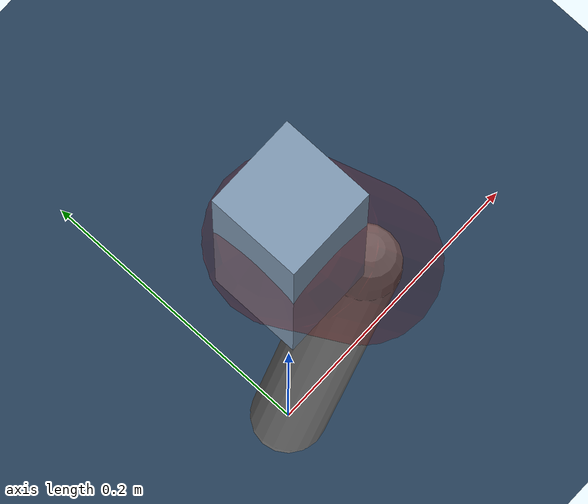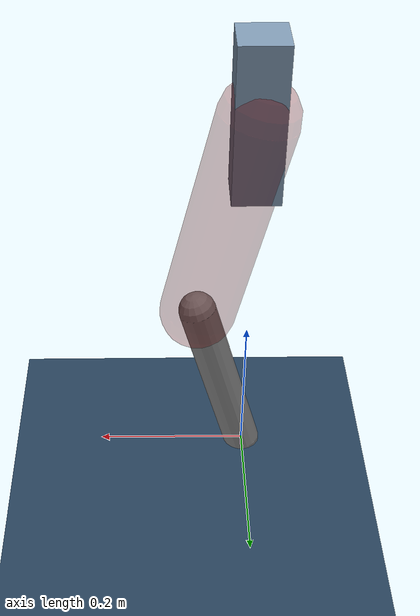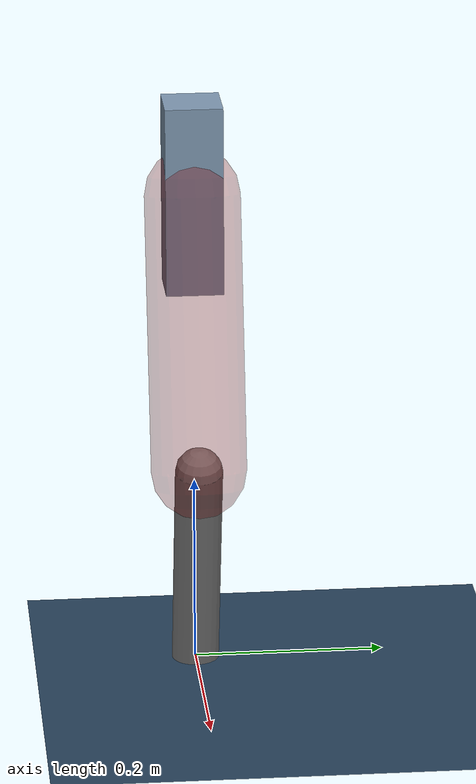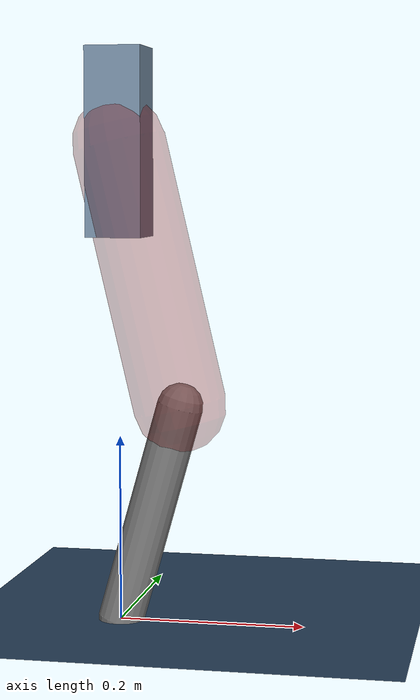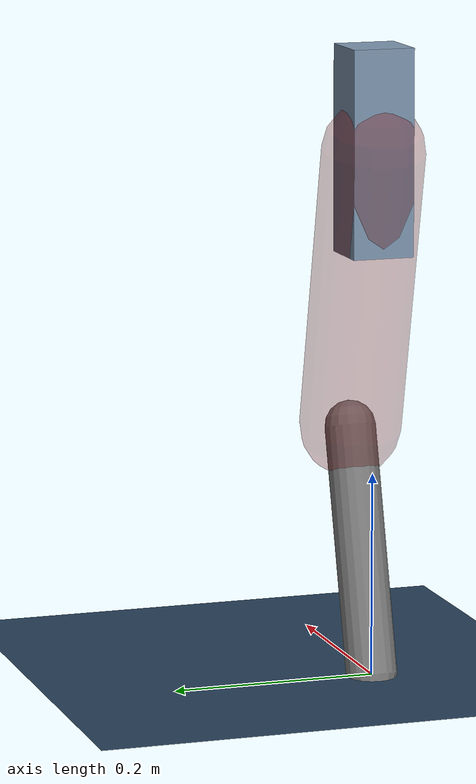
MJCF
<mujoco model="Hopper2D">
	<compiler inertiafromgeom="true" angle="radian" />
	<option timestep="0.001" integrator="implicit" cone="elliptic" solver="Newton" tolerance="1e-10" />

	<default>
		<geom contype="1" conaffinity="1" condim="3" friction="2 0.005 0.0001" solref="0.005 1" />
		<joint limited="true" damping="0.1" />
	</default>

	<asset>
		<texture name="skybox" type="skybox" builtin="gradient" rgb1=".4 .6 .8" rgb2="0 0 0" width="800" height="800" />
		<texture name="grid" type="2d" builtin="checker" rgb1=".1 .2 .3" rgb2=".2 .3 .4" width="300" height="300" mark="edge" markrgb=".2 .3 .4" />
		<material name="ground" texture="grid" texrepeat="1 1" texuniform="true" reflectance="0.1" />
		<material name="leg" rgba="0.5 0.6 0.7 1" />
	</asset>

	<worldbody>

		<geom name="floor" type="plane" size="5 5 0.25" material="ground" />

		<light directional="false" diffuse="0.8 0.8 0.8" specular="0.3 0.3 0.3" pos="0 0 2" dir="0 0 -1" />
		<light mode="targetbodycom" target="base" directional="false" diffuse="0.8 0.8 0.8" specular="0.3 0.3 0.3" pos="0 0 2" dir="0 0 -1" />

		<camera name="fixed" pos="0 -2 1" xyaxes="1 0 0 0 0 1" />
		<camera name="tracking" mode="trackcom" pos="0 -3 1" />

		<body name="root" pos="0 0 0.5150403135305879">
			<joint name="slide_x" type="slide" axis="1 0 0" range="-100 100" />
			<joint name="slide_z" type="slide" axis="0 0 1" range="0 10" />

			<body name="base" pos="0 0 0">
				<geom name="torso" type="box" size="0.03 0.03 0.1" mass="1.943" material="leg" />

				<body name="link1" pos="0 0 0" euler="0 1.3398569701040268 0">
					<joint type="hinge" axis="0 -1 0" pos="0 0 0" name="hinge1" limited="true" range="-3.14 3.14" stiffness="0" damping="0.1" />
					<geom name="thigh" type="capsule" fromto="0 0 0 0.28792747451365175 0 0" size="0.05" rgba="0.5 0 0 0.3" mass="0.9563041811868598" />

					<body name="link2" pos="0.28792747451365175 0 0" euler="0 0.5046289421494845 0">
						<joint type="hinge" axis="0 -1 0" pos="0 0 0" name="hinge2" limited="true" range="-3.14 3.14" stiffness="0" damping="0.1" />
						<geom name="shank" type="capsule" fromto="0 0 0 0.24383217361789533 0 0" size="0.025" mass="0.4374489562561058" />

					</body>
				</body>
			</body>
		</body>
	</worldbody>

	<actuator>
		<motor name="torque1" joint="hinge1" ctrlrange="-71.88019435732336 71.88019435732336" ctrllimited="true" gear="1" />
		<motor name="torque2" joint="hinge2" ctrlrange="-64.3963407526876 64.3963407526876" ctrllimited="true" gear="1" />
	</actuator>
</mujoco>
